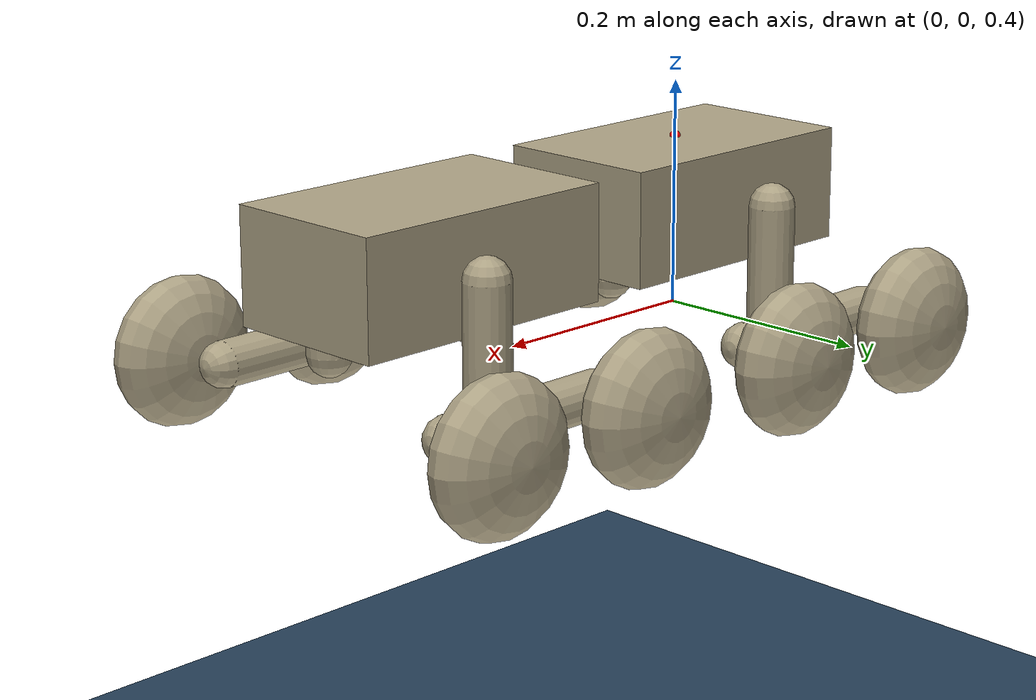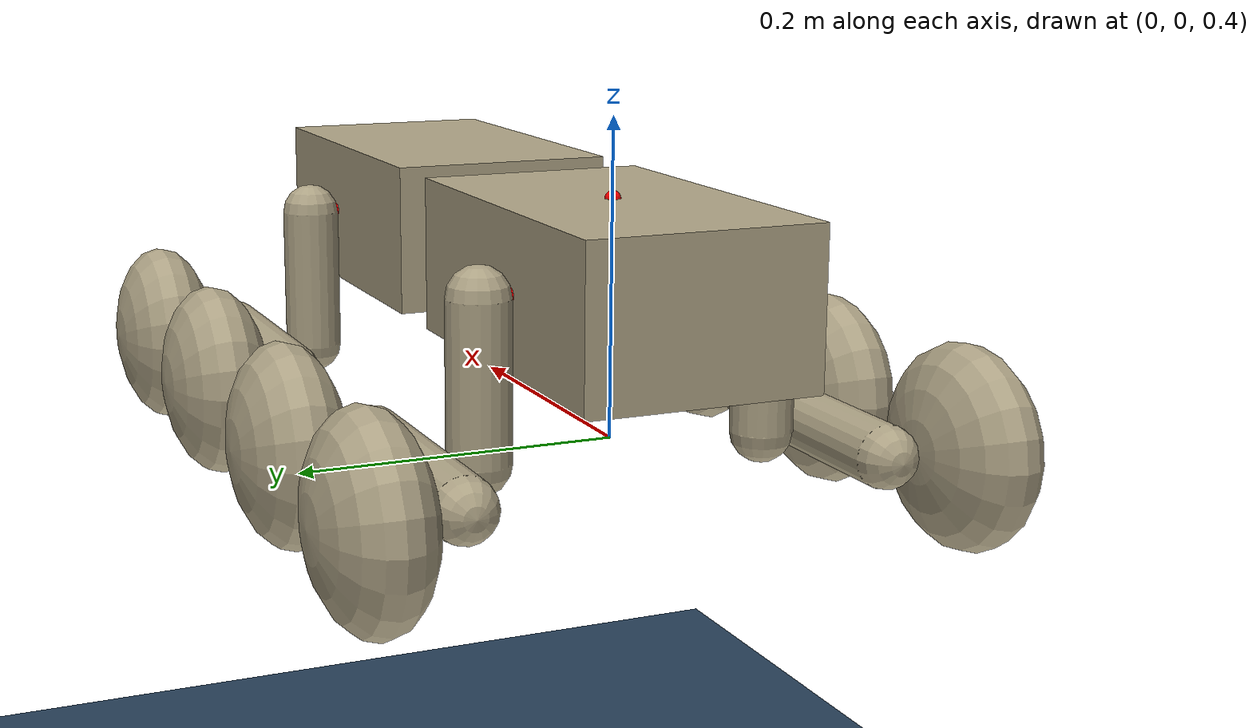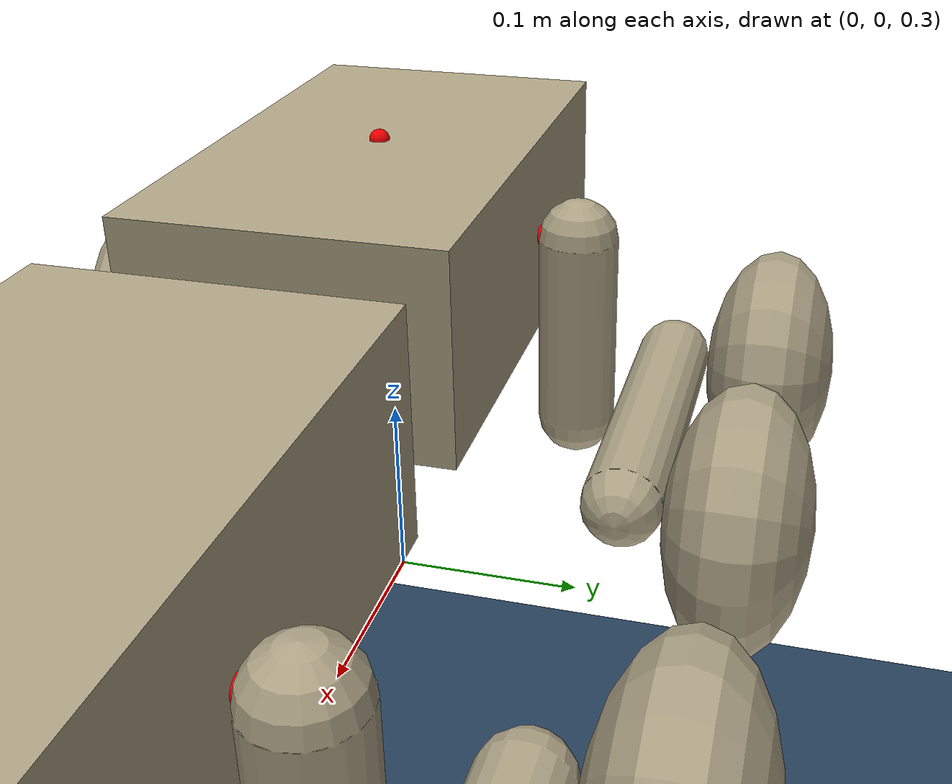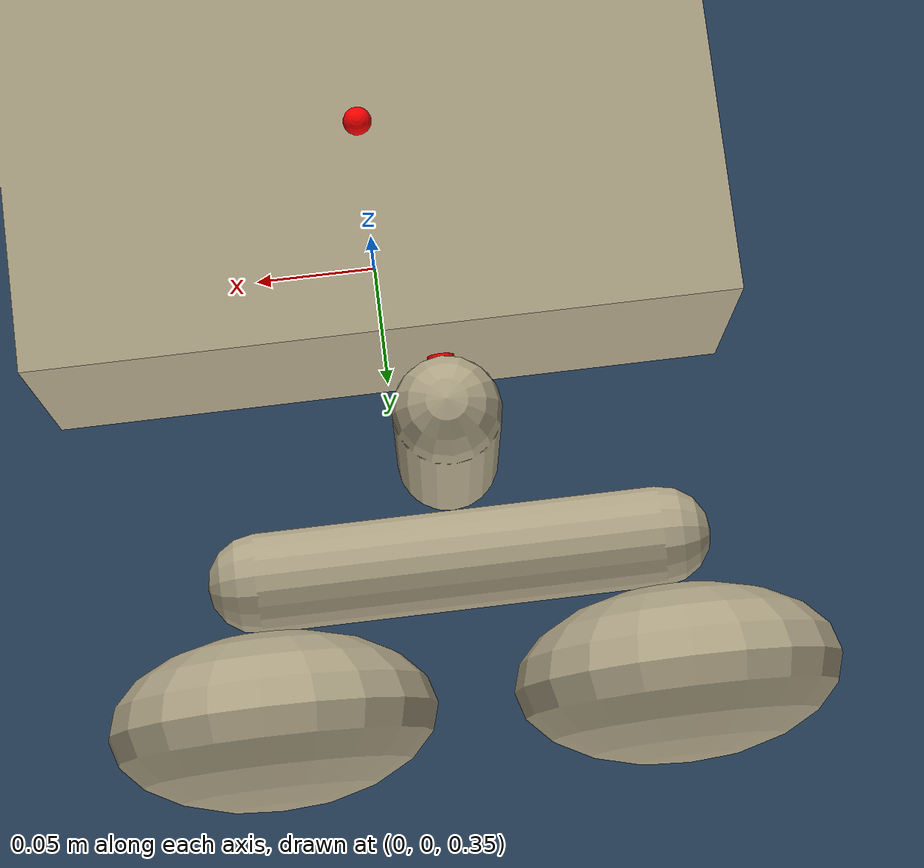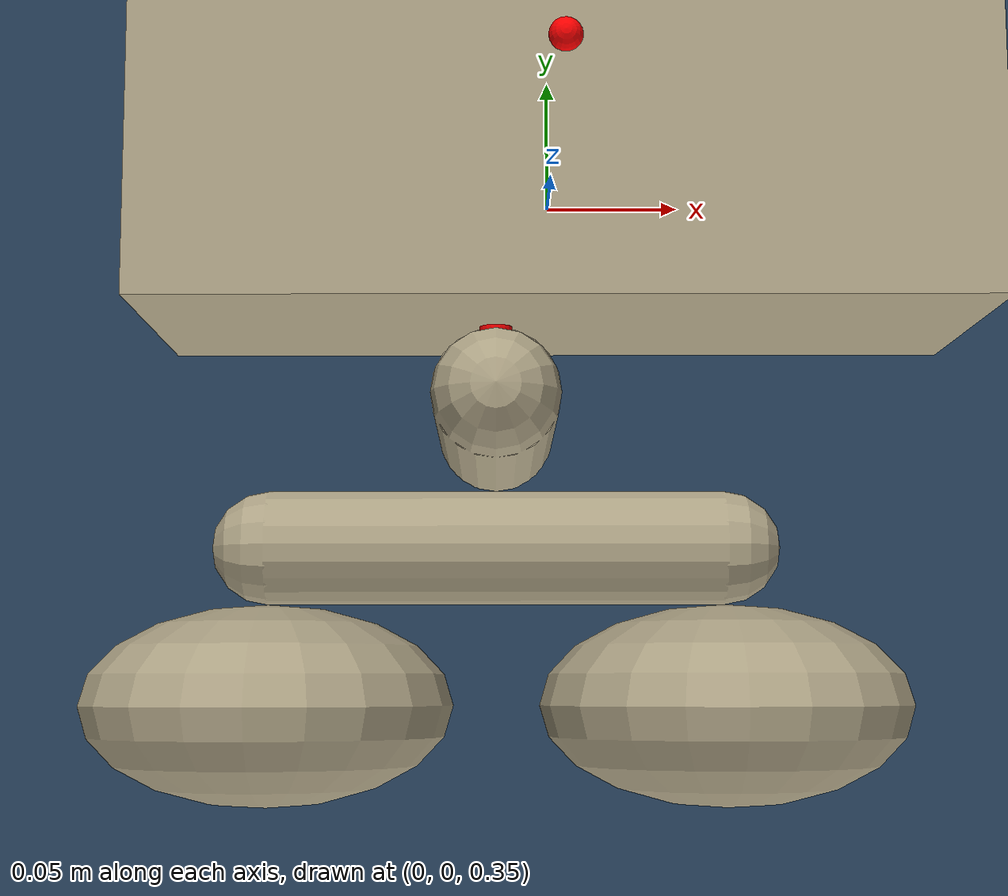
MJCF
<mujoco model="walter_sr scene">
  <include file="WaLTER_Senior_wheels.xml"/>

  <statistic center="0 0 0.1" extent="0.8"/>

  <visual>
    <headlight diffuse="0.6 0.6 0.6" ambient="0.3 0.3 0.3" specular="0 0 0"/>
    <rgba haze="0.15 0.25 0.35 1"/>
    <global azimuth="120" elevation="-20"/>
  </visual>

  <asset>
    <texture type="skybox" builtin="gradient" rgb1="0.3 0.5 0.7" rgb2="0 0 0" width="512" height="3072"/>
    <texture type="2d" name="groundplane" builtin="checker" mark="edge" rgb1="0.2 0.3 0.4" rgb2="0.1 0.2 0.3"
      markrgb="0.8 0.8 0.8" width="300" height="300"/>
    <material name="groundplane" texture="groundplane" texuniform="true" texrepeat="5 5" reflectance="0.2"/>
    <material name="wood" rgba="0.7 0.5 0.3 1"/>
  </asset>

  <worldbody>
    <light pos="0 0 1.5" dir="0 0 -1" directional="true"/>
    <camera name="default" pos="0.846 -1.465 0.916" xyaxes="0.866 0.500 0.000 -0.171 0.296 0.940"/>
    <geom name="floor" size="0 0 0.05" type="plane" material="groundplane"/>
    <!-- stairs -->
    <!-- stairs -->

  </worldbody>

</mujoco>

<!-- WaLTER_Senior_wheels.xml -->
<mujoco model="MuJoCo Model">
  <compiler angle="radian"/>

  <worldbody>
    <body name="torso" pos="0 0 0.5">
      <site name="torso_site" pos="0 0 0.05" type="sphere" rgba="1 0 0 1"/>
      <joint name="torso_joint" type="free" limited="false" actuatorfrclimited="false"/>
      <geom size="0.125 0.075 0.05" type="box" mass="10" rgba="0.694118 0.65098 0.533333 1"/>
      <body name="torso_left_thigh" pos="-0.02 0.075 0">
        <joint name="torso_left_thigh_joint" pos="0 0 0" axis="0 1 0" armature="0.0072" damping="5"/>
        <geom name="torso_left_thigh_geom" size="0.02 0.05" pos="0 0.02 -0.05" type="capsule" mass="0.5" rgba="0.694118 0.65098 0.533333 1"/>
        <site name="tl_thigh_site" pos="0 0 0" rgba="1 0 0 1"/>
        <body name="torso_left_shin" pos="0 0.06 -0.1">
          <joint name="torso_left_thigh_shin_joint" pos="0 0 0" axis="0 1 0" armature="0.01805" damping="5"/>
          <geom name="torso_left_shin_geom" size="0.02 0.08" quat="0.707107 0 0.707107 0" type="capsule" mass="0.5" rgba="0.694118 0.65098 0.533333 1"/>
          <site name="tl_shin_site" pos="0 0 0" rgba="1 0 0 1"/>
          <body name="torso_left_front_wheel" pos="0.08 0.055 0">
            <joint name="torso_left_shin_front_wheel_joint" pos="0 0 0" axis="0 1 0" armature="1e-05" damping="0.2"/>
            <geom name="torso_left_front_wheel_geom" size="0.065 0.065 0.035" quat="0.707107 0.707107 0 0" type="ellipsoid" solref="0.2 0.5" mass="0.5" rgba="0.694118 0.65098 0.533333 1"/>
            <site name="tlf_wheel_site" pos="0 0 0" size="0.065 0.065 0.035" quat="0.707107 0.707107 0 0" type="ellipsoid" rgba="1 0 0 1"/>
          </body>
          <body name="torso_left_rear_wheel" pos="-0.08 0.055 0">
            <joint name="torso_left_shin_rear_wheel_joint" pos="0 0 0" axis="0 1 0" armature="1e-05" damping="0.2"/>
            <geom name="torso_left_rear_wheel_geom" size="0.065 0.065 0.035" quat="0.707107 0.707107 0 0" type="ellipsoid" solref="0.2 0.5" mass="0.5" rgba="0.694118 0.65098 0.533333 1"/>
            <site name="tlr_wheel_site" pos="0 0 0" size="0.065 0.065 0.035" quat="0.707107 0.707107 0 0" type="ellipsoid" rgba="1 0 0 1"/>
          </body>
        </body>
      </body>
      <body name="torso_right_thigh" pos="-0.02 -0.075 0">
        <joint name="torso_right_thigh_joint" pos="0 0 0" axis="0 1 0" armature="0.0072" damping="5"/>
        <geom name="torso_right_thigh_geom" size="0.02 0.05" pos="0 -0.02 -0.05" type="capsule" mass="0.5" rgba="0.694118 0.65098 0.533333 1"/>
        <site name="tr_thigh_site" pos="0 0 0" rgba="1 0 0 1"/>
        <body name="torso_right_shin" pos="0 -0.06 -0.1">
          <joint name="torso_right_thigh_shin_joint" pos="0 0 0" axis="0 1 0" armature="0.01805" damping="5"/>
          <geom name="torso_right_shin_geom" size="0.02 0.08" quat="0.707107 0 0.707107 0" type="capsule" mass="0.5" rgba="0.694118 0.65098 0.533333 1"/>
          <site name="tr_shin_site" pos="0 0 0" rgba="1 0 0 1"/>
          <body name="torso_right_front_wheel" pos="0.08 -0.055 0">
            <joint name="torso_right_shin_front_wheel_joint" pos="0 0 0" axis="0 1 0" armature="1e-05" damping="0.2"/>
            <geom name="torso_right_front_wheel_geom" size="0.065 0.065 0.035" quat="0.707107 0.707107 0 0" type="ellipsoid" solref="0.2 0.5" mass="0.5" rgba="0.694118 0.65098 0.533333 1"/>
            <site name="trf_wheel_site" pos="0 0 0" size="0.065 0.065 0.035" quat="0.707107 0.707107 0 0" type="ellipsoid" rgba="1 0 0 1"/>
          </body>
          <body name="torso_right_rear_wheel" pos="-0.08 -0.055 0">
            <joint name="torso_right_shin_rear_wheel_joint" pos="0 0 0" axis="0 1 0" armature="1e-05" damping="0.2"/>
            <geom name="torso_right_rear_wheel_geom" size="0.065 0.065 0.035" quat="0.707107 0.707107 0 0" type="ellipsoid" solref="0.2 0.5" mass="0.5" rgba="0.694118 0.65098 0.533333 1"/>
            <site name="trr_wheel_site" pos="0 0 0" size="0.065 0.065 0.035" quat="0.707107 0.707107 0 0" type="ellipsoid" rgba="1 0 0 1"/>
          </body>
        </body>
      </body>
      <body name="head" pos="0.3 0 0">
        <geom size="0.125 0.075 0.05" type="box" mass="10" rgba="0.694118 0.65098 0.533333 1"/>
        <body name="head_left_thigh" pos="0.02 0.075 0">
          <joint name="head_left_thigh_joint" pos="0 0 0" axis="0 1 0" armature="0.0072" damping="5"/>
          <geom name="head_left_thigh_geom" size="0.02 0.05" pos="0 0.02 -0.05" type="capsule" mass="0.5" rgba="0.694118 0.65098 0.533333 1"/>
          <site name="hl_thigh_site" pos="0 0 0" rgba="1 0 0 1"/>
          <body name="head_left_shin" pos="0 0.06 -0.1">
            <joint name="head_left_thigh_shin_joint" pos="0 0 0" axis="0 1 0" armature="0.01805" damping="5"/>
            <geom name="head_left_shin_geom" size="0.02 0.08" quat="0.707107 0 0.707107 0" type="capsule" mass="0.5" rgba="0.694118 0.65098 0.533333 1"/>
            <site name="hl_shin_site" pos="0 0 0" rgba="1 0 0 1"/>
            <body name="head_left_front_wheel" pos="0.08 0.055 0">
              <joint name="head_left_shin_front_wheel_joint" pos="0 0 0" axis="0 1 0" armature="1e-05" damping="0.2"/>
              <geom name="head_left_front_wheel_geom" size="0.065 0.065 0.035" quat="0.707107 0.707107 0 0" type="ellipsoid" solref="0.2 0.5" mass="0.5" rgba="0.694118 0.65098 0.533333 1"/>
              <site name="hlf_wheel_site" pos="0 0 0" size="0.065 0.065 0.035" quat="0.707107 0.707107 0 0" type="ellipsoid" rgba="1 0 0 1"/>
            </body>
            <body name="head_left_rear_wheel" pos="-0.08 0.055 0">
              <joint name="head_left_shin_rear_wheel_joint" pos="0 0 0" axis="0 1 0" armature="1e-05" damping="0.2"/>
              <geom name="head_left_rear_wheel_geom" size="0.065 0.065 0.035" quat="0.707107 0.707107 0 0" type="ellipsoid" solref="0.2 0.5" mass="0.5" rgba="0.694118 0.65098 0.533333 1"/>
              <site name="hlr_wheel_site" pos="0 0 0" size="0.065 0.065 0.035" quat="0.707107 0.707107 0 0" type="ellipsoid" rgba="1 0 0 1"/>
            </body>
          </body>
        </body>
        <body name="head_right_thigh" pos="0.02 -0.075 0">
          <joint name="head_right_thigh_joint" pos="0 0 0" axis="0 1 0" armature="0.0072" damping="5"/>
          <geom name="head_right_thigh_geom" size="0.02 0.05" pos="0 -0.02 -0.05" type="capsule" mass="0.5" rgba="0.694118 0.65098 0.533333 1"/>
          <site name="hr_thigh_site" pos="0 0 0" rgba="1 0 0 1"/>
          <body name="head_right_shin" pos="0 -0.06 -0.1">
            <joint name="head_right_thigh_shin_joint" pos="0 0 0" axis="0 1 0" armature="0.01805" damping="5"/>
            <geom name="head_right_shin_geom" size="0.02 0.08" quat="0.707107 0 0.707107 0" type="capsule" mass="0.5" rgba="0.694118 0.65098 0.533333 1"/>
            <site name="hr_shin_site" pos="0 0 0" rgba="1 0 0 1"/>
            <body name="head_right_front_wheel" pos="0.08 -0.055 0">
              <joint name="head_right_shin_front_wheel_joint" pos="0 0 0" axis="0 1 0" armature="1e-05" damping="0.2"/>
              <geom name="head_right_front_wheel_geom" size="0.065 0.065 0.035" quat="0.707107 0.707107 0 0" type="ellipsoid" solref="0.2 0.5" mass="0.5" rgba="0.694118 0.65098 0.533333 1"/>
              <site name="hrf_wheel_site" pos="0 0 0" size="0.065 0.065 0.035" quat="0.707107 0.707107 0 0" type="ellipsoid" rgba="1 0 0 1"/>
            </body>
            <body name="head_right_rear_wheel" pos="-0.08 -0.055 0">
              <joint name="head_right_shin_rear_wheel_joint" pos="0 0 0" axis="0 1 0" armature="1e-05" damping="0.2"/>
              <geom name="head_right_rear_wheel_geom" size="0.065 0.065 0.035" quat="0.707107 0.707107 0 0" type="ellipsoid" solref="0.2 0.5" mass="0.5" rgba="0.694118 0.65098 0.533333 1"/>
              <site name="hrr_wheel_site" pos="0 0 0" size="0.065 0.065 0.035" quat="0.707107 0.707107 0 0" type="ellipsoid" rgba="1 0 0 1"/>
            </body>
          </body>
        </body>
      </body>
    </body>
  </worldbody>

  <actuator>
    <general name="bl_hip" joint="torso_left_thigh_joint"/>
    <general name="bl_knee" joint="torso_left_thigh_shin_joint"/>
    <general name="bl_wheel1_joint" joint="torso_left_shin_front_wheel_joint"/>
    <general name="bl_wheel2_joint" joint="torso_left_shin_rear_wheel_joint"/>
    <general name="br_hip" joint="torso_right_thigh_joint"/>
    <general name="br_knee" joint="torso_right_thigh_shin_joint"/>
    <general name="br_wheel1_joint" joint="torso_right_shin_front_wheel_joint"/>
    <general name="br_wheel2_joint" joint="torso_right_shin_rear_wheel_joint"/>
    <general name="fl_hip" joint="head_left_thigh_joint"/>
    <general name="fl_knee" joint="head_left_thigh_shin_joint"/>
    <general name="fl_wheel1_joint" joint="head_left_shin_front_wheel_joint"/>
    <general name="fl_wheel2_joint" joint="head_left_shin_rear_wheel_joint"/>
    <general name="fr_hip" joint="head_right_thigh_joint"/>
    <general name="fr_knee" joint="head_right_thigh_shin_joint"/>
    <general name="fr_wheel1_joint" joint="head_right_shin_front_wheel_joint"/>
    <general name="fr_wheel2_joint" joint="head_right_shin_rear_wheel_joint"/>
  </actuator>

    <!-- key frame has 0,0 for wheel sites because the bodies have the positions fixed/initialized -->
    <keyframe>
      <key name="home"
        qpos="0 0 0.1675 1 0 0 0
              0 0
              0 0
              0 0
              0 0
              0 0
              0 0
              0 0
              0 0"
        ctrl="0 0
              0 0
              0 0
              0 0
              0 0
              0 0
              0 0
              0 0"/>

    </keyframe>
        <!-- qpos='0.0898423 -0.0025112 0.05 1 0 0 0 3.62333 -5.46591 3.62333 -5.46591 3.62333 -5.46591 3.62333 -5.46591 ' -->

</mujoco>
